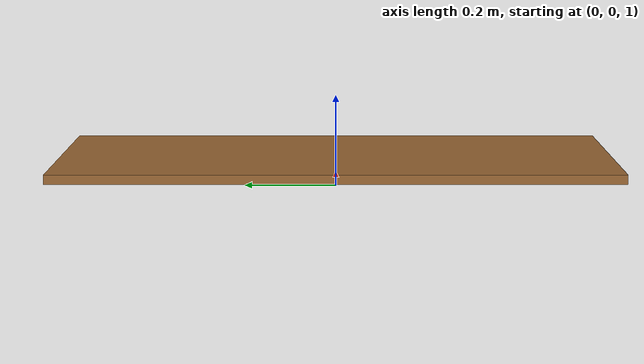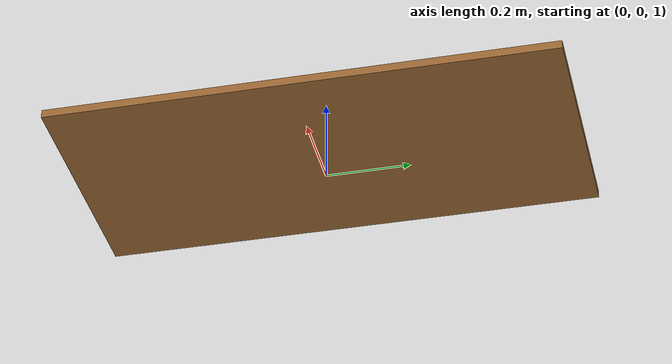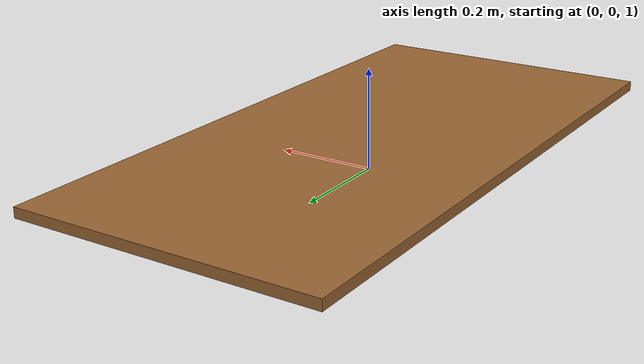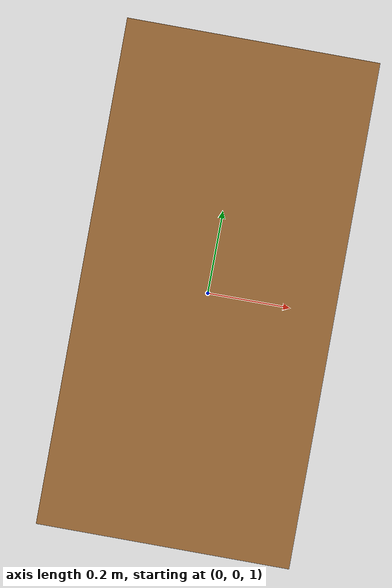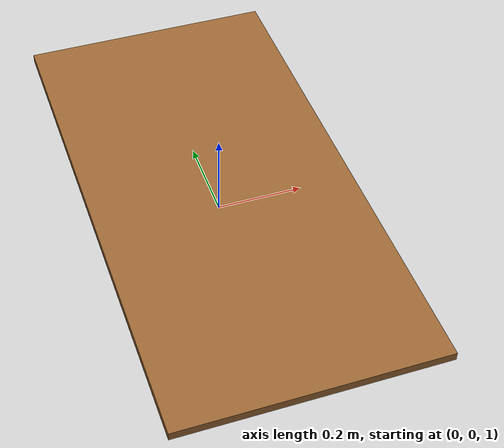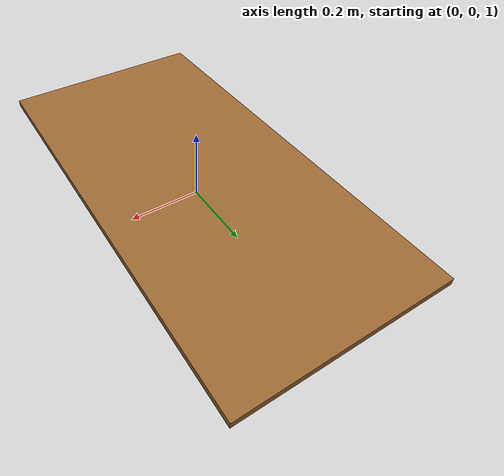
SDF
<?xml version="1.0" ?>
<sdf version="1.6">
  <model name="simple_table">
    <static>true</static>

    <!-- Tabletop -->
    <link name="tabletop_link">
      <pose>0 0 1.06 0 0 0</pose> <!-- Top of legs: 0.8 + 0.1 (half tabletop height) -->
      <visual name="tabletop_visual">
        <geometry>
          <box>
            <size>0.6 1.2 0.02</size> <!-- length, width, height -->
          </box>
        </geometry>
        <material>
          <ambient>0.6 0.4 0.2 1</ambient>
        </material>
      </visual>
      <collision name="tabletop_collision">
        <geometry>
          <box>
            <size>0.6 1.2 0.02</size>
          </box>
        </geometry>
      </collision>
    </link>

  </model>
</sdf>
